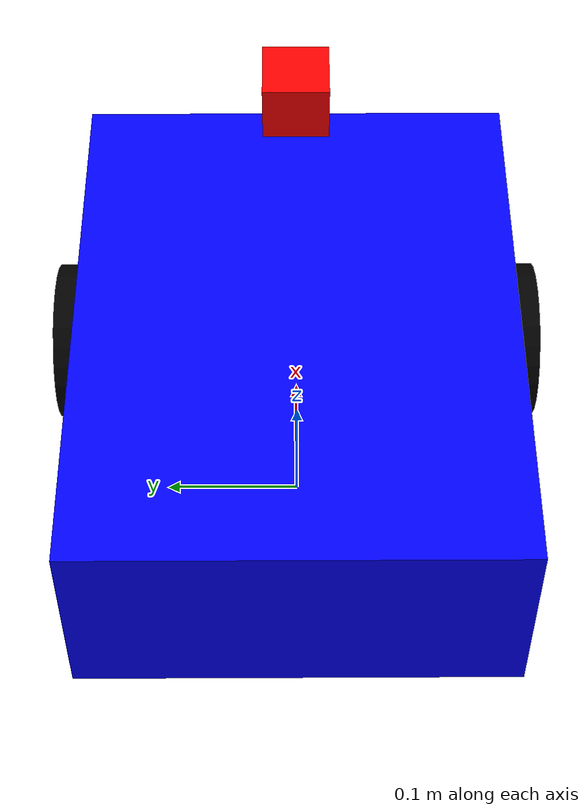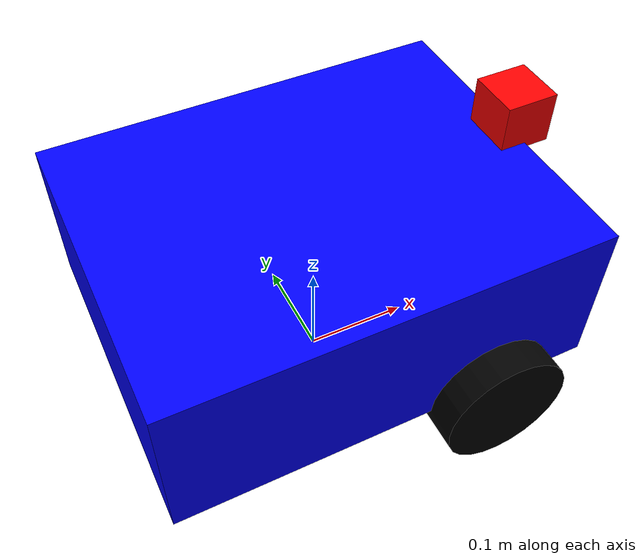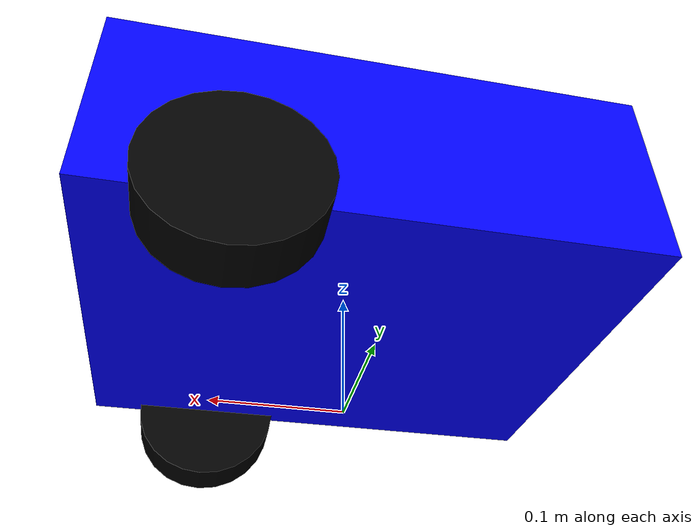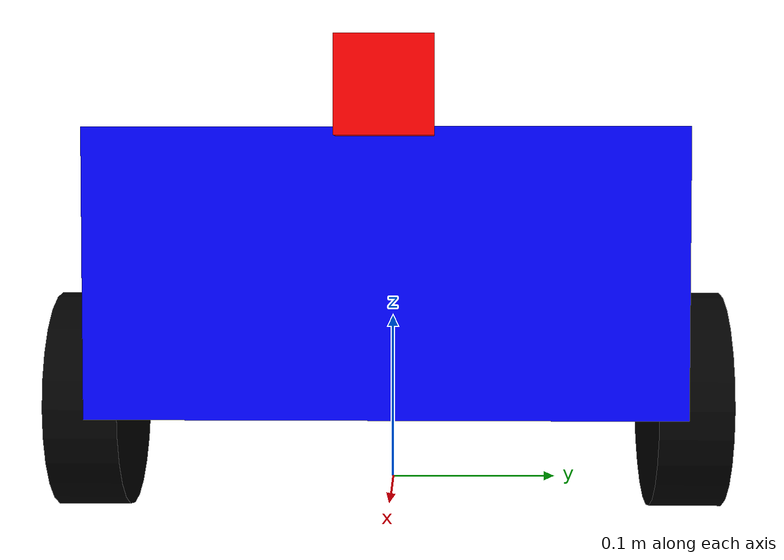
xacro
<?xml version="1.0"?>
<robot xmlns:xacro="http://www.ros.org/wiki/xacro" name="simple_robot">

    <xacro:property name="base_width" value="0.31"/>
    <xacro:property name="base_length" value="0.4"/>
    <xacro:property name="base_height" value="0.15"/>
    <xacro:property name="wheel_radius" value="0.06"/>
    <xacro:property name="wheel_width" value="0.04"/>
    <xacro:property name="wheel_separation" value="0.33"/>

    <link name="base_footprint"/>

    <link name="base_link">
        <visual>
            <geometry>
                <box size="${base_length} ${base_width} ${base_height}"/>
            </geometry>
            <material name="blue">
                <color rgba="0.0 0.0 1.0 1.0"/>
            </material>
        </visual>
        <collision>
            <geometry>
                <box size="${base_length} ${base_width} ${base_height}"/>
            </geometry>
        </collision>
        <inertial>
            <mass value="5.0"/>
            <inertia ixx="0.3" ixy="0.0" ixz="0.0" iyy="0.4" iyz="0.0" izz="0.5"/>
        </inertial>
    </link>

    <link name="right_wheel_link">
        <visual>
            <geometry>
                <cylinder radius="${wheel_radius}" length="${wheel_width}"/>
            </geometry>
            <origin rpy="1.5707 0 0" xyz="0 0 0"/>
            <material name="black">
                <color rgba="0.0 0.0 0.0 1.0"/>
            </material>
        </visual>
        <collision>
            <geometry>
                <cylinder radius="${wheel_radius}" length="${wheel_width}"/>
            </geometry>
            <origin rpy="1.5707 0 0" xyz="0 0 0"/>
        </collision>
        <inertial>
            <mass value="0.5"/>
            <inertia ixx="0.004" ixy="0.0" ixz="0.0" iyy="0.004" iyz="0.0" izz="0.008"/>
        </inertial>
    </link>

    <link name="left_wheel_link">
        <visual>
            <geometry>
                <cylinder radius="${wheel_radius}" length="${wheel_width}"/>
            </geometry>
            <origin rpy="1.5707 0 0" xyz="0 0 0"/>
            <material name="black"/>
        </visual>
        <collision>
            <geometry>
                <cylinder radius="${wheel_radius}" length="${wheel_width}"/>
            </geometry>
            <origin rpy="1.5707 0 0" xyz="0 0 0"/>
        </collision>
        <inertial>
            <mass value="0.5"/>
            <inertia ixx="0.004" ixy="0.0" ixz="0.0" iyy="0.004" iyz="0.0" izz="0.008"/>
        </inertial>
    </link>

    <link name="camera_link">
        <visual>
            <geometry>
                <box size="0.05 0.05 0.05"/>
            </geometry>
            <material name="red">
                <color rgba="1.0 0.0 0.0 1.0"/>
            </material>
        </visual>
        <collision>
            <geometry>
                <box size="0.05 0.05 0.05"/>
            </geometry>
        </collision>
        <inertial>
            <mass value="0.1"/>
            <inertia ixx="0.0001" ixy="0.0" ixz="0.0" iyy="0.0001" iyz="0.0" izz="0.0001"/>
        </inertial>
    </link>

    <joint name="base_footprint_joint" type="fixed">
        <parent link="base_footprint"/>
        <child link="base_link"/>
        <origin xyz="0 0 ${wheel_radius + base_height/2}" rpy="0 0 0"/>
    </joint>

    <joint name="right_wheel_joint" type="continuous">
        <parent link="base_link"/>
        <child link="right_wheel_link"/>
        <origin xyz="${base_length/4} ${-wheel_separation/2} ${-base_height/2}" rpy="0 0 0"/>
        <axis xyz="0 1 0"/>
    </joint>

    <joint name="left_wheel_joint" type="continuous">
        <parent link="base_link"/>
        <child link="left_wheel_link"/>
        <origin xyz="${base_length/4} ${wheel_separation/2} ${-base_height/2}" rpy="0 0 0"/>
        <axis xyz="0 1 0"/>
    </joint>

    <joint name="camera_joint" type="fixed">
        <parent link="base_link"/>
        <child link="camera_link"/>
        <origin xyz="${base_length/2} 0 ${base_height/2 + 0.02}" rpy="0 0 0"/>
    </joint>

    <ros2_control name="GazeboSystem" type="system">
        <hardware>
            <plugin>gazebo_ros2_control/GazeboSystem</plugin>
        </hardware>
        <joint name="left_wheel_joint">
            <command_interface name="velocity"/>
            <state_interface name="position"/>
            <state_interface name="velocity"/>
        </joint>
        <joint name="right_wheel_joint">
            <command_interface name="velocity"/>
            <state_interface name="position"/>
            <state_interface name="velocity"/>
        </joint>
    </ros2_control>

    <gazebo>
        <plugin name="gazebo_ros2_control" filename="libgazebo_ros2_control.so">
            <robot_sim_type>gazebo_ros2_control/GazeboSystem</robot_sim_type>
            <parameters>$(find simulation_irc)/config/diff_drive_controller.yaml</parameters>
        </plugin>
    </gazebo>

    <gazebo reference="camera_link">
        <plugin name="camera_controller" filename="libgazebo_ros_camera.so">
            <ros>
                <namespace>/camera</namespace>
                <image_topic>image_raw</image_topic>
                <camera_info_topic>camera_info</camera_info_topic>
            </ros>

            <camera name="my_camera">
                <horizontal_fov>1.396</horizontal_fov>
                <image>
                    <width>640</width>
                    <height>480</height>
                    <format>R8G8B8</format>
                </image>
                <clip>
                    <near>0.02</near>
                    <far>300</far>
                </clip>
            </camera>

            <update_rate>30.0</update_rate>
        </plugin>
    </gazebo>

</robot>
